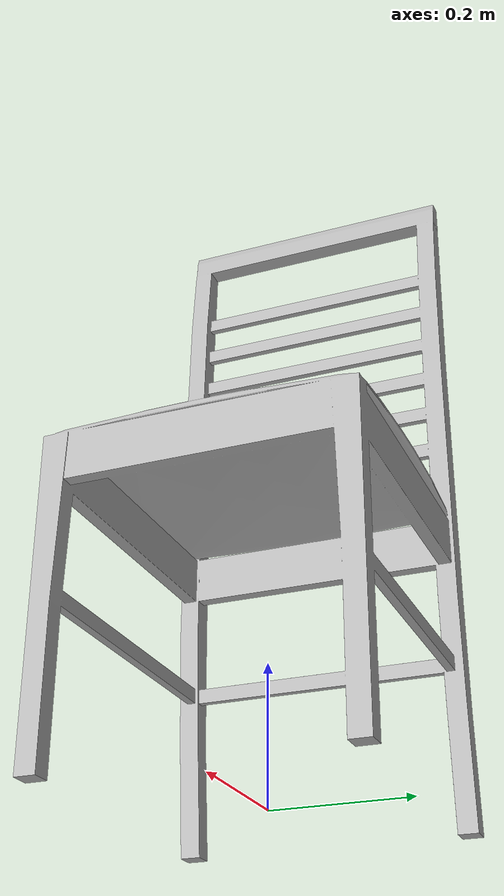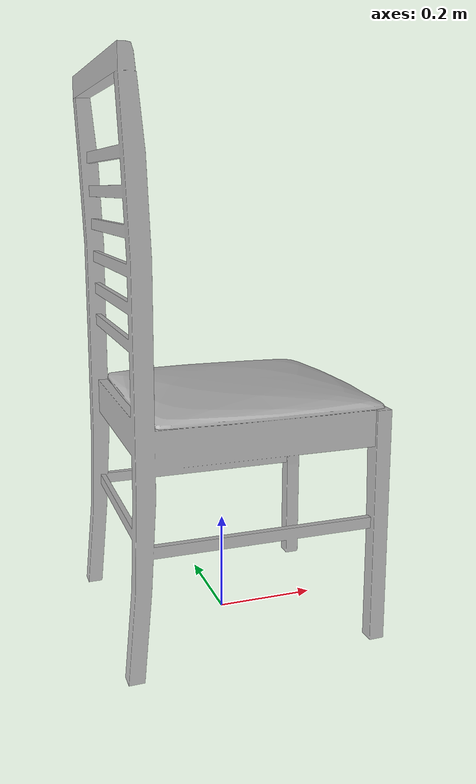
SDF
<?xml version='1.0'?>
<sdf version='1.4'>
  <model name='89'>
    <pose>0 0 0 0 0 0</pose>
    <static>true</static>
    <link name='link'>
      <collision name='collision'>
        <pose>0 0 0 0 0 0</pose>
        <geometry>
          <box>
            <size>0.511274 0.46 2</size>
          </box>
        </geometry>
      </collision>
      <visual name='visual'>
        <pose>0 0 0 0 0 0</pose>
        <geometry>
          <mesh><uri>model://89/89.dae</uri></mesh>
        </geometry>
      </visual>
    </link>
  </model>
</sdf>
